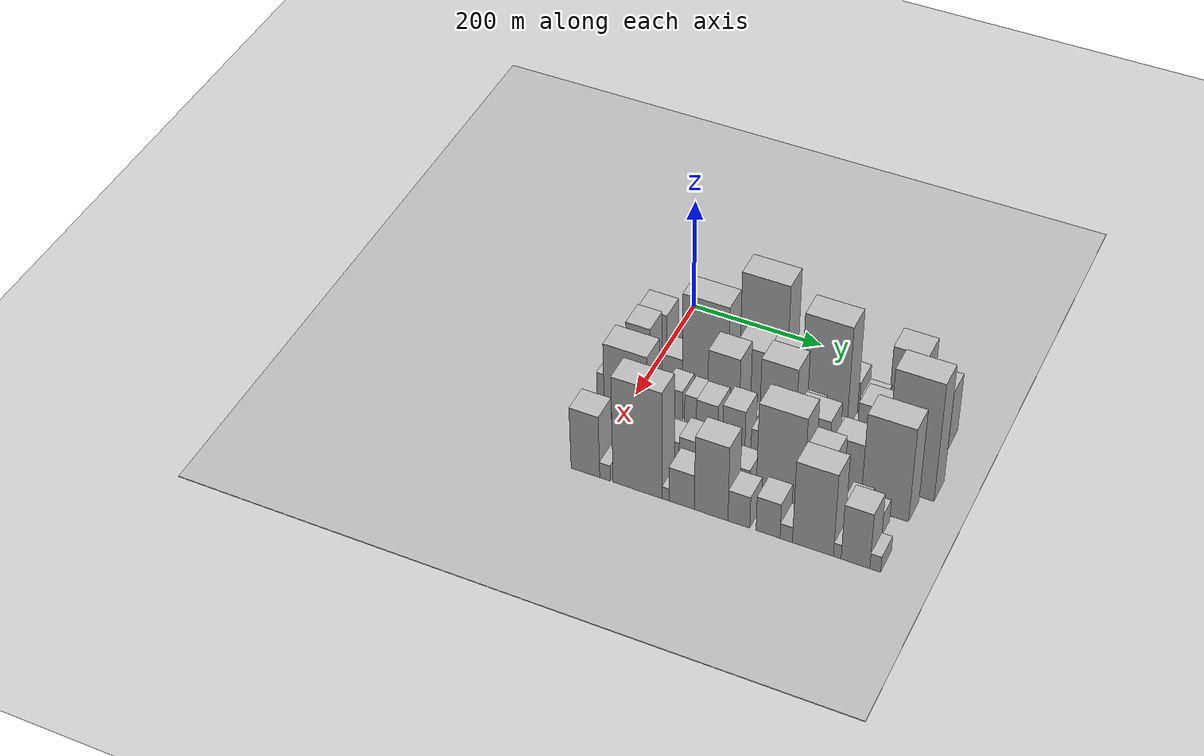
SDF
<sdf version="1.6">
 <world name="default">
  <include><name>ground_plane_1</name><uri>model://HANNAS_ground_plane</uri></include>
  <include>
   <name>ground_plane_2</name>
   <uri>model://HANNAS_ground_plane</uri>
   <pose>100 0 0  0 0 0</pose>
  </include>
  <model name="building_24">
   <static>1</static>
   <pose>100.0000 -11.5762 0 0.000000 0.000000 0.000000</pose>
   <link name="link">
    <pose>0 0 43.50 0 0 0</pose>
    <collision name="collision"><geometry><box><size>40.0000 45.2983 87.0000</size></box></geometry></collision>
    <visual name="visual">
     <cast_shadows>0</cast_shadows>
     <geometry><box><size>40.0000 45.2983 87.0000</size></box></geometry>
     <material>
      <script>
       <uri>model://HANNAS_wall/materials/scripts</uri>
       <uri>model://HANNAS_wall/materials/textures</uri>
       <name>vrc/HANNAS_wall</name>
      </script>
     </material>
    </visual>
   </link>
  </model>
  <model name="building_25">
   <static>1</static>
   <pose>100.0000 21.3272 0 0.000000 0.000000 0.000000</pose>
   <link name="link">
    <pose>0 0 7.50 0 0 0</pose>
    <collision name="collision"><geometry><box><size>40.0000 6.5086 15.0000</size></box></geometry></collision>
    <visual name="visual">
     <cast_shadows>0</cast_shadows>
     <geometry><box><size>40.0000 6.5086 15.0000</size></box></geometry>
     <material>
      <script>
       <uri>model://HANNAS_wall/materials/scripts</uri>
       <uri>model://HANNAS_wall/materials/textures</uri>
       <name>vrc/HANNAS_wall</name>
      </script>
     </material>
    </visual>
   </link>
  </model>
  <model name="building_26">
   <static>1</static>
   <pose>100.0000 47.0952 0 0.000000 0.000000 0.000000</pose>
   <link name="link">
    <pose>0 0 37.50 0 0 0</pose>
    <collision name="collision"><geometry><box><size>40.0000 39.0274 75.0000</size></box></geometry></collision>
    <visual name="visual">
     <cast_shadows>0</cast_shadows>
     <geometry><box><size>40.0000 39.0274 75.0000</size></box></geometry>
     <material>
      <script>
       <uri>model://HANNAS_wall/materials/scripts</uri>
       <uri>model://HANNAS_wall/materials/textures</uri>
       <name>vrc/HANNAS_wall</name>
      </script>
     </material>
    </visual>
   </link>
  </model>
  <model name="building_27">
   <static>1</static>
   <pose>100.0000 70.4942 0 0.000000 0.000000 0.000000</pose>
   <link name="link">
    <pose>0 0 9.00 0 0 0</pose>
    <collision name="collision"><geometry><box><size>40.0000 7.7707 18.0000</size></box></geometry></collision>
    <visual name="visual">
     <cast_shadows>0</cast_shadows>
     <geometry><box><size>40.0000 7.7707 18.0000</size></box></geometry>
     <material>
      <script>
       <uri>model://HANNAS_wall/materials/scripts</uri>
       <uri>model://HANNAS_wall/materials/textures</uri>
       <name>vrc/HANNAS_wall</name>
      </script>
     </material>
    </visual>
   </link>
  </model>
  <model name="building_28">
   <static>1</static>
   <pose>100.0000 103.2333 0 0.000000 0.000000 0.000000</pose>
   <link name="link">
    <pose>0 0 39.00 0 0 0</pose>
    <collision name="collision"><geometry><box><size>40.0000 39.7075 78.0000</size></box></geometry></collision>
    <visual name="visual">
     <cast_shadows>0</cast_shadows>
     <geometry><box><size>40.0000 39.7075 78.0000</size></box></geometry>
     <material>
      <script>
       <uri>model://HANNAS_wall/materials/scripts</uri>
       <uri>model://HANNAS_wall/materials/textures</uri>
       <name>vrc/HANNAS_wall</name>
      </script>
     </material>
    </visual>
   </link>
  </model>
  <model name="building_29">
   <static>1</static>
   <pose>100.0000 158.6253 0 0.000000 0.000000 0.000000</pose>
   <link name="link">
    <pose>0 0 106.50 0 0 0</pose>
    <collision name="collision"><geometry><box><size>40.0000 71.0764 213.0000</size></box></geometry></collision>
    <visual name="visual">
     <cast_shadows>0</cast_shadows>
     <geometry><box><size>40.0000 71.0764 213.0000</size></box></geometry>
     <material>
      <script>
       <uri>model://HANNAS_wall/materials/scripts</uri>
       <uri>model://HANNAS_wall/materials/textures</uri>
       <name>vrc/HANNAS_wall</name>
      </script>
     </material>
    </visual>
   </link>
  </model>
  <model name="building_30">
   <static>1</static>
   <pose>100.0000 216.2023 0 0.000000 0.000000 0.000000</pose>
   <link name="link">
    <pose>0 0 36.00 0 0 0</pose>
    <collision name="collision"><geometry><box><size>40.0000 38.0775 72.0000</size></box></geometry></collision>
    <visual name="visual">
     <cast_shadows>0</cast_shadows>
     <geometry><box><size>40.0000 38.0775 72.0000</size></box></geometry>
     <material>
      <script>
       <uri>model://HANNAS_wall/materials/scripts</uri>
       <uri>model://HANNAS_wall/materials/textures</uri>
       <name>vrc/HANNAS_wall</name>
      </script>
     </material>
    </visual>
   </link>
  </model>
  <model name="building_31">
   <static>1</static>
   <pose>100.0000 250.1702 0 0.000000 0.000000 0.000000</pose>
   <link name="link">
    <pose>0 0 15.00 0 0 0</pose>
    <collision name="collision"><geometry><box><size>40.0000 15.8583 30.0000</size></box></geometry></collision>
    <visual name="visual">
     <cast_shadows>0</cast_shadows>
     <geometry><box><size>40.0000 15.8583 30.0000</size></box></geometry>
     <material>
      <script>
       <uri>model://HANNAS_wall/materials/scripts</uri>
       <uri>model://HANNAS_wall/materials/textures</uri>
       <name>vrc/HANNAS_wall</name>
      </script>
     </material>
    </visual>
   </link>
  </model>
  <model name="building_32">
   <static>1</static>
   <pose>100.0000 280.5941 0 0.000000 0.000000 0.000000</pose>
   <link name="link">
    <pose>0 0 37.50 0 0 0</pose>
    <collision name="collision"><geometry><box><size>40.0000 44.9895 75.0000</size></box></geometry></collision>
    <visual name="visual">
     <cast_shadows>0</cast_shadows>
     <geometry><box><size>40.0000 44.9895 75.0000</size></box></geometry>
     <material>
      <script>
       <uri>model://HANNAS_wall/materials/scripts</uri>
       <uri>model://HANNAS_wall/materials/textures</uri>
       <name>vrc/HANNAS_wall</name>
      </script>
     </material>
    </visual>
   </link>
  </model>
  <model name="building_33">
   <static>1</static>
   <pose>100.0000 311.9117 0 0.000000 0.000000 0.000000</pose>
   <link name="link">
    <pose>0 0 15.00 0 0 0</pose>
    <collision name="collision"><geometry><box><size>40.0000 17.6456 30.0000</size></box></geometry></collision>
    <visual name="visual">
     <cast_shadows>0</cast_shadows>
     <geometry><box><size>40.0000 17.6456 30.0000</size></box></geometry>
     <material>
      <script>
       <uri>model://HANNAS_wall/materials/scripts</uri>
       <uri>model://HANNAS_wall/materials/textures</uri>
       <name>vrc/HANNAS_wall</name>
      </script>
     </material>
    </visual>
   </link>
  </model>
  <model name="building_34">
   <static>1</static>
   <pose>100.0000 335.8827 0 0.000000 0.000000 0.000000</pose>
   <link name="link">
    <pose>0 0 18.00 0 0 0</pose>
    <collision name="collision"><geometry><box><size>40.0000 18.2963 36.0000</size></box></geometry></collision>
    <visual name="visual">
     <cast_shadows>0</cast_shadows>
     <geometry><box><size>40.0000 18.2963 36.0000</size></box></geometry>
     <material>
      <script>
       <uri>model://HANNAS_wall/materials/scripts</uri>
       <uri>model://HANNAS_wall/materials/textures</uri>
       <name>vrc/HANNAS_wall</name>
      </script>
     </material>
    </visual>
   </link>
  </model>
  <model name="building_35">
   <static>1</static>
   <pose>100.0000 370.0634 0 0.000000 0.000000 0.000000</pose>
   <link name="link">
    <pose>0 0 81.00 0 0 0</pose>
    <collision name="collision"><geometry><box><size>40.0000 50.0652 162.0000</size></box></geometry></collision>
    <visual name="visual">
     <cast_shadows>0</cast_shadows>
     <geometry><box><size>40.0000 50.0652 162.0000</size></box></geometry>
     <material>
      <script>
       <uri>model://HANNAS_wall/materials/scripts</uri>
       <uri>model://HANNAS_wall/materials/textures</uri>
       <name>vrc/HANNAS_wall</name>
      </script>
     </material>
    </visual>
   </link>
  </model>
  <model name="building_36">
   <static>1</static>
   <pose>100.0000 414.9326 0 0.000000 0.000000 0.000000</pose>
   <link name="link">
    <pose>0 0 55.50 0 0 0</pose>
    <collision name="collision"><geometry><box><size>40.0000 39.6732 111.0000</size></box></geometry></collision>
    <visual name="visual">
     <cast_shadows>0</cast_shadows>
     <geometry><box><size>40.0000 39.6732 111.0000</size></box></geometry>
     <material>
      <script>
       <uri>model://HANNAS_wall/materials/scripts</uri>
       <uri>model://HANNAS_wall/materials/textures</uri>
       <name>vrc/HANNAS_wall</name>
      </script>
     </material>
    </visual>
   </link>
  </model>
  <model name="building_71">
   <static>1</static>
   <pose>149.0000 -10.8856 0 0.000000 0.000000 0.000000</pose>
   <link name="link">
    <pose>0 0 51.00 0 0 0</pose>
    <collision name="collision"><geometry><box><size>40.0000 37.5283 102.0000</size></box></geometry></collision>
    <visual name="visual">
     <cast_shadows>0</cast_shadows>
     <geometry><box><size>40.0000 37.5283 102.0000</size></box></geometry>
     <material>
      <script>
       <uri>model://HANNAS_wall/materials/scripts</uri>
       <uri>model://HANNAS_wall/materials/textures</uri>
       <name>vrc/HANNAS_wall</name>
      </script>
     </material>
    </visual>
   </link>
  </model>
  <model name="building_72">
   <static>1</static>
   <pose>149.0000 16.5453 0 0.000000 0.000000 0.000000</pose>
   <link name="link">
    <pose>0 0 16.50 0 0 0</pose>
    <collision name="collision"><geometry><box><size>40.0000 17.3335 33.0000</size></box></geometry></collision>
    <visual name="visual">
     <cast_shadows>0</cast_shadows>
     <geometry><box><size>40.0000 17.3335 33.0000</size></box></geometry>
     <material>
      <script>
       <uri>model://HANNAS_wall/materials/scripts</uri>
       <uri>model://HANNAS_wall/materials/textures</uri>
       <name>vrc/HANNAS_wall</name>
      </script>
     </material>
    </visual>
   </link>
  </model>
  <model name="building_73">
   <static>1</static>
   <pose>149.0000 41.0637 0 0.000000 0.000000 0.000000</pose>
   <link name="link">
    <pose>0 0 31.50 0 0 0</pose>
    <collision name="collision"><geometry><box><size>40.0000 31.7033 63.0000</size></box></geometry></collision>
    <visual name="visual">
     <cast_shadows>0</cast_shadows>
     <geometry><box><size>40.0000 31.7033 63.0000</size></box></geometry>
     <material>
      <script>
       <uri>model://HANNAS_wall/materials/scripts</uri>
       <uri>model://HANNAS_wall/materials/textures</uri>
       <name>vrc/HANNAS_wall</name>
      </script>
     </material>
    </visual>
   </link>
  </model>
  <model name="building_74">
   <static>1</static>
   <pose>149.0000 91.6704 0 0.000000 0.000000 0.000000</pose>
   <link name="link">
    <pose>0 0 94.50 0 0 0</pose>
    <collision name="collision"><geometry><box><size>40.0000 69.5101 189.0000</size></box></geometry></collision>
    <visual name="visual">
     <cast_shadows>0</cast_shadows>
     <geometry><box><size>40.0000 69.5101 189.0000</size></box></geometry>
     <material>
      <script>
       <uri>model://HANNAS_wall/materials/scripts</uri>
       <uri>model://HANNAS_wall/materials/textures</uri>
       <name>vrc/HANNAS_wall</name>
      </script>
     </material>
    </visual>
   </link>
  </model>
  <model name="building_75">
   <static>1</static>
   <pose>149.0000 161.1197 0 0.000000 0.000000 0.000000</pose>
   <link name="link">
    <pose>0 0 63.00 0 0 0</pose>
    <collision name="collision"><geometry><box><size>40.0000 49.3885 126.0000</size></box></geometry></collision>
    <visual name="visual">
     <cast_shadows>0</cast_shadows>
     <geometry><box><size>40.0000 49.3885 126.0000</size></box></geometry>
     <material>
      <script>
       <uri>model://HANNAS_wall/materials/scripts</uri>
       <uri>model://HANNAS_wall/materials/textures</uri>
       <name>vrc/HANNAS_wall</name>
      </script>
     </material>
    </visual>
   </link>
  </model>
  <model name="building_76">
   <static>1</static>
   <pose>149.0000 208.2466 0 0.000000 0.000000 0.000000</pose>
   <link name="link">
    <pose>0 0 69.00 0 0 0</pose>
    <collision name="collision"><geometry><box><size>40.0000 44.8652 138.0000</size></box></geometry></collision>
    <visual name="visual">
     <cast_shadows>0</cast_shadows>
     <geometry><box><size>40.0000 44.8652 138.0000</size></box></geometry>
     <material>
      <script>
       <uri>model://HANNAS_wall/materials/scripts</uri>
       <uri>model://HANNAS_wall/materials/textures</uri>
       <name>vrc/HANNAS_wall</name>
      </script>
     </material>
    </visual>
   </link>
  </model>
  <model name="building_77">
   <static>1</static>
   <pose>149.0000 269.0928 0 0.000000 0.000000 0.000000</pose>
   <link name="link">
    <pose>0 0 111.00 0 0 0</pose>
    <collision name="collision"><geometry><box><size>40.0000 68.8273 222.0000</size></box></geometry></collision>
    <visual name="visual">
     <cast_shadows>0</cast_shadows>
     <geometry><box><size>40.0000 68.8273 222.0000</size></box></geometry>
     <material>
      <script>
       <uri>model://HANNAS_wall/materials/scripts</uri>
       <uri>model://HANNAS_wall/materials/textures</uri>
       <name>vrc/HANNAS_wall</name>
      </script>
     </material>
    </visual>
   </link>
  </model>
  <model name="building_78">
   <static>1</static>
   <pose>149.0000 309.4140 0 0.000000 0.000000 0.000000</pose>
   <link name="link">
    <pose>0 0 13.50 0 0 0</pose>
    <collision name="collision"><geometry><box><size>40.0000 11.8151 27.0000</size></box></geometry></collision>
    <visual name="visual">
     <cast_shadows>0</cast_shadows>
     <geometry><box><size>40.0000 11.8151 27.0000</size></box></geometry>
     <material>
      <script>
       <uri>model://HANNAS_wall/materials/scripts</uri>
       <uri>model://HANNAS_wall/materials/textures</uri>
       <name>vrc/HANNAS_wall</name>
      </script>
     </material>
    </visual>
   </link>
  </model>
  <model name="building_79">
   <static>1</static>
   <pose>149.0000 334.7948 0 0.000000 0.000000 0.000000</pose>
   <link name="link">
    <pose>0 0 49.50 0 0 0</pose>
    <collision name="collision"><geometry><box><size>40.0000 30.9463 99.0000</size></box></geometry></collision>
    <visual name="visual">
     <cast_shadows>0</cast_shadows>
     <geometry><box><size>40.0000 30.9463 99.0000</size></box></geometry>
     <material>
      <script>
       <uri>model://HANNAS_wall/materials/scripts</uri>
       <uri>model://HANNAS_wall/materials/textures</uri>
       <name>vrc/HANNAS_wall</name>
      </script>
     </material>
    </visual>
   </link>
  </model>
  <model name="building_80">
   <static>1</static>
   <pose>149.0000 360.9140 0 0.000000 0.000000 0.000000</pose>
   <link name="link">
    <pose>0 0 18.00 0 0 0</pose>
    <collision name="collision"><geometry><box><size>40.0000 21.2920 36.0000</size></box></geometry></collision>
    <visual name="visual">
     <cast_shadows>0</cast_shadows>
     <geometry><box><size>40.0000 21.2920 36.0000</size></box></geometry>
     <material>
      <script>
       <uri>model://HANNAS_wall/materials/scripts</uri>
       <uri>model://HANNAS_wall/materials/textures</uri>
       <name>vrc/HANNAS_wall</name>
      </script>
     </material>
    </visual>
   </link>
  </model>
  <model name="building_81">
   <static>1</static>
   <pose>149.0000 395.6098 0 0.000000 0.000000 0.000000</pose>
   <link name="link">
    <pose>0 0 36.00 0 0 0</pose>
    <collision name="collision"><geometry><box><size>40.0000 40.0995 72.0000</size></box></geometry></collision>
    <visual name="visual">
     <cast_shadows>0</cast_shadows>
     <geometry><box><size>40.0000 40.0995 72.0000</size></box></geometry>
     <material>
      <script>
       <uri>model://HANNAS_wall/materials/scripts</uri>
       <uri>model://HANNAS_wall/materials/textures</uri>
       <name>vrc/HANNAS_wall</name>
      </script>
     </material>
    </visual>
   </link>
  </model>
  <model name="building_119">
   <static>1</static>
   <pose>198.0000 19.2305 0 0.000000 0.000000 0.000000</pose>
   <link name="link">
    <pose>0 0 18.00 0 0 0</pose>
    <collision name="collision"><geometry><box><size>40.0000 21.4598 36.0000</size></box></geometry></collision>
    <visual name="visual">
     <cast_shadows>0</cast_shadows>
     <geometry><box><size>40.0000 21.4598 36.0000</size></box></geometry>
     <material>
      <script>
       <uri>model://HANNAS_wall/materials/scripts</uri>
       <uri>model://HANNAS_wall/materials/textures</uri>
       <name>vrc/HANNAS_wall</name>
      </script>
     </material>
    </visual>
   </link>
  </model>
  <model name="building_120">
   <static>1</static>
   <pose>198.0000 44.6415 0 0.000000 0.000000 0.000000</pose>
   <link name="link">
    <pose>0 0 13.50 0 0 0</pose>
    <collision name="collision"><geometry><box><size>40.0000 13.3621 27.0000</size></box></geometry></collision>
    <visual name="visual">
     <cast_shadows>0</cast_shadows>
     <geometry><box><size>40.0000 13.3621 27.0000</size></box></geometry>
     <material>
      <script>
       <uri>model://HANNAS_wall/materials/scripts</uri>
       <uri>model://HANNAS_wall/materials/textures</uri>
       <name>vrc/HANNAS_wall</name>
      </script>
     </material>
    </visual>
   </link>
  </model>
  <model name="building_121">
   <static>1</static>
   <pose>198.0000 65.3377 0 0.000000 0.000000 0.000000</pose>
   <link name="link">
    <pose>0 0 27.00 0 0 0</pose>
    <collision name="collision"><geometry><box><size>40.0000 28.0304 54.0000</size></box></geometry></collision>
    <visual name="visual">
     <cast_shadows>0</cast_shadows>
     <geometry><box><size>40.0000 28.0304 54.0000</size></box></geometry>
     <material>
      <script>
       <uri>model://HANNAS_wall/materials/scripts</uri>
       <uri>model://HANNAS_wall/materials/textures</uri>
       <name>vrc/HANNAS_wall</name>
      </script>
     </material>
    </visual>
   </link>
  </model>
  <model name="building_122">
   <static>1</static>
   <pose>198.0000 97.2248 0 0.000000 0.000000 0.000000</pose>
   <link name="link">
    <pose>0 0 25.50 0 0 0</pose>
    <collision name="collision"><geometry><box><size>40.0000 29.7440 51.0000</size></box></geometry></collision>
    <visual name="visual">
     <cast_shadows>0</cast_shadows>
     <geometry><box><size>40.0000 29.7440 51.0000</size></box></geometry>
     <material>
      <script>
       <uri>model://HANNAS_wall/materials/scripts</uri>
       <uri>model://HANNAS_wall/materials/textures</uri>
       <name>vrc/HANNAS_wall</name>
      </script>
     </material>
    </visual>
   </link>
  </model>
  <model name="building_123">
   <static>1</static>
   <pose>198.0000 140.6705 0 0.000000 0.000000 0.000000</pose>
   <link name="link">
    <pose>0 0 75.00 0 0 0</pose>
    <collision name="collision"><geometry><box><size>40.0000 47.1474 150.0000</size></box></geometry></collision>
    <visual name="visual">
     <cast_shadows>0</cast_shadows>
     <geometry><box><size>40.0000 47.1474 150.0000</size></box></geometry>
     <material>
      <script>
       <uri>model://HANNAS_wall/materials/scripts</uri>
       <uri>model://HANNAS_wall/materials/textures</uri>
       <name>vrc/HANNAS_wall</name>
      </script>
     </material>
    </visual>
   </link>
  </model>
  <model name="building_124">
   <static>1</static>
   <pose>198.0000 175.2721 0 0.000000 0.000000 0.000000</pose>
   <link name="link">
    <pose>0 0 19.50 0 0 0</pose>
    <collision name="collision"><geometry><box><size>40.0000 22.0558 39.0000</size></box></geometry></collision>
    <visual name="visual">
     <cast_shadows>0</cast_shadows>
     <geometry><box><size>40.0000 22.0558 39.0000</size></box></geometry>
     <material>
      <script>
       <uri>model://HANNAS_wall/materials/scripts</uri>
       <uri>model://HANNAS_wall/materials/textures</uri>
       <name>vrc/HANNAS_wall</name>
      </script>
     </material>
    </visual>
   </link>
  </model>
  <model name="building_125">
   <static>1</static>
   <pose>198.0000 220.9483 0 0.000000 0.000000 0.000000</pose>
   <link name="link">
    <pose>0 0 82.50 0 0 0</pose>
    <collision name="collision"><geometry><box><size>40.0000 53.2965 165.0000</size></box></geometry></collision>
    <visual name="visual">
     <cast_shadows>0</cast_shadows>
     <geometry><box><size>40.0000 53.2965 165.0000</size></box></geometry>
     <material>
      <script>
       <uri>model://HANNAS_wall/materials/scripts</uri>
       <uri>model://HANNAS_wall/materials/textures</uri>
       <name>vrc/HANNAS_wall</name>
      </script>
     </material>
    </visual>
   </link>
  </model>
  <model name="building_126">
   <static>1</static>
   <pose>198.0000 261.6572 0 0.000000 0.000000 0.000000</pose>
   <link name="link">
    <pose>0 0 46.50 0 0 0</pose>
    <collision name="collision"><geometry><box><size>40.0000 28.1213 93.0000</size></box></geometry></collision>
    <visual name="visual">
     <cast_shadows>0</cast_shadows>
     <geometry><box><size>40.0000 28.1213 93.0000</size></box></geometry>
     <material>
      <script>
       <uri>model://HANNAS_wall/materials/scripts</uri>
       <uri>model://HANNAS_wall/materials/textures</uri>
       <name>vrc/HANNAS_wall</name>
      </script>
     </material>
    </visual>
   </link>
  </model>
  <model name="building_127">
   <static>1</static>
   <pose>198.0000 297.5882 0 0.000000 0.000000 0.000000</pose>
   <link name="link">
    <pose>0 0 31.50 0 0 0</pose>
    <collision name="collision"><geometry><box><size>40.0000 33.7406 63.0000</size></box></geometry></collision>
    <visual name="visual">
     <cast_shadows>0</cast_shadows>
     <geometry><box><size>40.0000 33.7406 63.0000</size></box></geometry>
     <material>
      <script>
       <uri>model://HANNAS_wall/materials/scripts</uri>
       <uri>model://HANNAS_wall/materials/textures</uri>
       <name>vrc/HANNAS_wall</name>
      </script>
     </material>
    </visual>
   </link>
  </model>
  <model name="building_128">
   <static>1</static>
   <pose>198.0000 324.5553 0 0.000000 0.000000 0.000000</pose>
   <link name="link">
    <pose>0 0 18.00 0 0 0</pose>
    <collision name="collision"><geometry><box><size>40.0000 20.1936 36.0000</size></box></geometry></collision>
    <visual name="visual">
     <cast_shadows>0</cast_shadows>
     <geometry><box><size>40.0000 20.1936 36.0000</size></box></geometry>
     <material>
      <script>
       <uri>model://HANNAS_wall/materials/scripts</uri>
       <uri>model://HANNAS_wall/materials/textures</uri>
       <name>vrc/HANNAS_wall</name>
      </script>
     </material>
    </visual>
   </link>
  </model>
  <model name="building_129">
   <static>1</static>
   <pose>198.0000 355.9904 0 0.000000 0.000000 0.000000</pose>
   <link name="link">
    <pose>0 0 70.50 0 0 0</pose>
    <collision name="collision"><geometry><box><size>40.0000 42.6764 141.0000</size></box></geometry></collision>
    <visual name="visual">
     <cast_shadows>0</cast_shadows>
     <geometry><box><size>40.0000 42.6764 141.0000</size></box></geometry>
     <material>
      <script>
       <uri>model://HANNAS_wall/materials/scripts</uri>
       <uri>model://HANNAS_wall/materials/textures</uri>
       <name>vrc/HANNAS_wall</name>
      </script>
     </material>
    </visual>
   </link>
  </model>
  <model name="building_130">
   <static>1</static>
   <pose>198.0000 415.3258 0 0.000000 0.000000 0.000000</pose>
   <link name="link">
    <pose>0 0 111.00 0 0 0</pose>
    <collision name="collision"><geometry><box><size>40.0000 69.9945 222.0000</size></box></geometry></collision>
    <visual name="visual">
     <cast_shadows>0</cast_shadows>
     <geometry><box><size>40.0000 69.9945 222.0000</size></box></geometry>
     <material>
      <script>
       <uri>model://HANNAS_wall/materials/scripts</uri>
       <uri>model://HANNAS_wall/materials/textures</uri>
       <name>vrc/HANNAS_wall</name>
      </script>
     </material>
    </visual>
   </link>
  </model>
  <model name="building_166">
   <static>1</static>
   <pose>247.0000 -11.4057 0 0.000000 0.000000 0.000000</pose>
   <link name="link">
    <pose>0 0 46.50 0 0 0</pose>
    <collision name="collision"><geometry><box><size>40.0000 33.0544 93.0000</size></box></geometry></collision>
    <visual name="visual">
     <cast_shadows>0</cast_shadows>
     <geometry><box><size>40.0000 33.0544 93.0000</size></box></geometry>
     <material>
      <script>
       <uri>model://HANNAS_wall/materials/scripts</uri>
       <uri>model://HANNAS_wall/materials/textures</uri>
       <name>vrc/HANNAS_wall</name>
      </script>
     </material>
    </visual>
   </link>
  </model>
  <model name="building_167">
   <static>1</static>
   <pose>247.0000 28.4714 0 0.000000 0.000000 0.000000</pose>
   <link name="link">
    <pose>0 0 60.00 0 0 0</pose>
    <collision name="collision"><geometry><box><size>40.0000 46.6997 120.0000</size></box></geometry></collision>
    <visual name="visual">
     <cast_shadows>0</cast_shadows>
     <geometry><box><size>40.0000 46.6997 120.0000</size></box></geometry>
     <material>
      <script>
       <uri>model://HANNAS_wall/materials/scripts</uri>
       <uri>model://HANNAS_wall/materials/textures</uri>
       <name>vrc/HANNAS_wall</name>
      </script>
     </material>
    </visual>
   </link>
  </model>
  <model name="building_168">
   <static>1</static>
   <pose>247.0000 137.6351 0 0.000000 0.000000 0.000000</pose>
   <link name="link">
    <pose>0 0 51.00 0 0 0</pose>
    <collision name="collision"><geometry><box><size>40.0000 31.8759 102.0000</size></box></geometry></collision>
    <visual name="visual">
     <cast_shadows>0</cast_shadows>
     <geometry><box><size>40.0000 31.8759 102.0000</size></box></geometry>
     <material>
      <script>
       <uri>model://HANNAS_wall/materials/scripts</uri>
       <uri>model://HANNAS_wall/materials/textures</uri>
       <name>vrc/HANNAS_wall</name>
      </script>
     </material>
    </visual>
   </link>
  </model>
  <model name="building_169">
   <static>1</static>
   <pose>247.0000 177.0601 0 0.000000 0.000000 0.000000</pose>
   <link name="link">
    <pose>0 0 54.00 0 0 0</pose>
    <collision name="collision"><geometry><box><size>40.0000 32.9741 108.0000</size></box></geometry></collision>
    <visual name="visual">
     <cast_shadows>0</cast_shadows>
     <geometry><box><size>40.0000 32.9741 108.0000</size></box></geometry>
     <material>
      <script>
       <uri>model://HANNAS_wall/materials/scripts</uri>
       <uri>model://HANNAS_wall/materials/textures</uri>
       <name>vrc/HANNAS_wall</name>
      </script>
     </material>
    </visual>
   </link>
  </model>
  <model name="building_170">
   <static>1</static>
   <pose>247.0000 226.6523 0 0.000000 0.000000 0.000000</pose>
   <link name="link">
    <pose>0 0 40.50 0 0 0</pose>
    <collision name="collision"><geometry><box><size>40.0000 48.2104 81.0000</size></box></geometry></collision>
    <visual name="visual">
     <cast_shadows>0</cast_shadows>
     <geometry><box><size>40.0000 48.2104 81.0000</size></box></geometry>
     <material>
      <script>
       <uri>model://HANNAS_wall/materials/scripts</uri>
       <uri>model://HANNAS_wall/materials/textures</uri>
       <name>vrc/HANNAS_wall</name>
      </script>
     </material>
    </visual>
   </link>
  </model>
  <model name="building_171">
   <static>1</static>
   <pose>247.0000 258.5172 0 0.000000 0.000000 0.000000</pose>
   <link name="link">
    <pose>0 0 10.50 0 0 0</pose>
    <collision name="collision"><geometry><box><size>40.0000 9.5194 21.0000</size></box></geometry></collision>
    <visual name="visual">
     <cast_shadows>0</cast_shadows>
     <geometry><box><size>40.0000 9.5194 21.0000</size></box></geometry>
     <material>
      <script>
       <uri>model://HANNAS_wall/materials/scripts</uri>
       <uri>model://HANNAS_wall/materials/textures</uri>
       <name>vrc/HANNAS_wall</name>
      </script>
     </material>
    </visual>
   </link>
  </model>
  <model name="building_172">
   <static>1</static>
   <pose>247.0000 288.9874 0 0.000000 0.000000 0.000000</pose>
   <link name="link">
    <pose>0 0 70.50 0 0 0</pose>
    <collision name="collision"><geometry><box><size>40.0000 51.4208 141.0000</size></box></geometry></collision>
    <visual name="visual">
     <cast_shadows>0</cast_shadows>
     <geometry><box><size>40.0000 51.4208 141.0000</size></box></geometry>
     <material>
      <script>
       <uri>model://HANNAS_wall/materials/scripts</uri>
       <uri>model://HANNAS_wall/materials/textures</uri>
       <name>vrc/HANNAS_wall</name>
      </script>
     </material>
    </visual>
   </link>
  </model>
  <model name="building_173">
   <static>1</static>
   <pose>247.0000 341.6644 0 0.000000 0.000000 0.000000</pose>
   <link name="link">
    <pose>0 0 58.50 0 0 0</pose>
    <collision name="collision"><geometry><box><size>40.0000 43.9334 117.0000</size></box></geometry></collision>
    <visual name="visual">
     <cast_shadows>0</cast_shadows>
     <geometry><box><size>40.0000 43.9334 117.0000</size></box></geometry>
     <material>
      <script>
       <uri>model://HANNAS_wall/materials/scripts</uri>
       <uri>model://HANNAS_wall/materials/textures</uri>
       <name>vrc/HANNAS_wall</name>
      </script>
     </material>
    </visual>
   </link>
  </model>
  <model name="building_174">
   <static>1</static>
   <pose>247.0000 397.8898 0 0.000000 0.000000 0.000000</pose>
   <link name="link">
    <pose>0 0 88.50 0 0 0</pose>
    <collision name="collision"><geometry><box><size>40.0000 68.5173 177.0000</size></box></geometry></collision>
    <visual name="visual">
     <cast_shadows>0</cast_shadows>
     <geometry><box><size>40.0000 68.5173 177.0000</size></box></geometry>
     <material>
      <script>
       <uri>model://HANNAS_wall/materials/scripts</uri>
       <uri>model://HANNAS_wall/materials/textures</uri>
       <name>vrc/HANNAS_wall</name>
      </script>
     </material>
    </visual>
   </link>
  </model>
  <model name="building_211">
   <static>1</static>
   <pose>296.0000 -7.5408 0 0.000000 0.000000 0.000000</pose>
   <link name="link">
    <pose>0 0 16.50 0 0 0</pose>
    <collision name="collision"><geometry><box><size>40.0000 19.3779 33.0000</size></box></geometry></collision>
    <visual name="visual">
     <cast_shadows>0</cast_shadows>
     <geometry><box><size>40.0000 19.3779 33.0000</size></box></geometry>
     <material>
      <script>
       <uri>model://HANNAS_wall/materials/scripts</uri>
       <uri>model://HANNAS_wall/materials/textures</uri>
       <name>vrc/HANNAS_wall</name>
      </script>
     </material>
    </visual>
   </link>
  </model>
  <model name="building_212">
   <static>1</static>
   <pose>296.0000 39.2769 0 0.000000 0.000000 0.000000</pose>
   <link name="link">
    <pose>0 0 102.00 0 0 0</pose>
    <collision name="collision"><geometry><box><size>40.0000 64.2575 204.0000</size></box></geometry></collision>
    <visual name="visual">
     <cast_shadows>0</cast_shadows>
     <geometry><box><size>40.0000 64.2575 204.0000</size></box></geometry>
     <material>
      <script>
       <uri>model://HANNAS_wall/materials/scripts</uri>
       <uri>model://HANNAS_wall/materials/textures</uri>
       <name>vrc/HANNAS_wall</name>
      </script>
     </material>
    </visual>
   </link>
  </model>
  <model name="building_213">
   <static>1</static>
   <pose>296.0000 99.7199 0 0.000000 0.000000 0.000000</pose>
   <link name="link">
    <pose>0 0 31.50 0 0 0</pose>
    <collision name="collision"><geometry><box><size>40.0000 36.6285 63.0000</size></box></geometry></collision>
    <visual name="visual">
     <cast_shadows>0</cast_shadows>
     <geometry><box><size>40.0000 36.6285 63.0000</size></box></geometry>
     <material>
      <script>
       <uri>model://HANNAS_wall/materials/scripts</uri>
       <uri>model://HANNAS_wall/materials/textures</uri>
       <name>vrc/HANNAS_wall</name>
      </script>
     </material>
    </visual>
   </link>
  </model>
  <model name="building_214">
   <static>1</static>
   <pose>296.0000 138.3616 0 0.000000 0.000000 0.000000</pose>
   <link name="link">
    <pose>0 0 37.50 0 0 0</pose>
    <collision name="collision"><geometry><box><size>40.0000 40.6550 75.0000</size></box></geometry></collision>
    <visual name="visual">
     <cast_shadows>0</cast_shadows>
     <geometry><box><size>40.0000 40.6550 75.0000</size></box></geometry>
     <material>
      <script>
       <uri>model://HANNAS_wall/materials/scripts</uri>
       <uri>model://HANNAS_wall/materials/textures</uri>
       <name>vrc/HANNAS_wall</name>
      </script>
     </material>
    </visual>
   </link>
  </model>
  <model name="building_215">
   <static>1</static>
   <pose>296.0000 167.1240 0 0.000000 0.000000 0.000000</pose>
   <link name="link">
    <pose>0 0 16.50 0 0 0</pose>
    <collision name="collision"><geometry><box><size>40.0000 16.8697 33.0000</size></box></geometry></collision>
    <visual name="visual">
     <cast_shadows>0</cast_shadows>
     <geometry><box><size>40.0000 16.8697 33.0000</size></box></geometry>
     <material>
      <script>
       <uri>model://HANNAS_wall/materials/scripts</uri>
       <uri>model://HANNAS_wall/materials/textures</uri>
       <name>vrc/HANNAS_wall</name>
      </script>
     </material>
    </visual>
   </link>
  </model>
  <model name="building_216">
   <static>1</static>
   <pose>296.0000 186.3547 0 0.000000 0.000000 0.000000</pose>
   <link name="link">
    <pose>0 0 15.00 0 0 0</pose>
    <collision name="collision"><geometry><box><size>40.0000 15.5917 30.0000</size></box></geometry></collision>
    <visual name="visual">
     <cast_shadows>0</cast_shadows>
     <geometry><box><size>40.0000 15.5917 30.0000</size></box></geometry>
     <material>
      <script>
       <uri>model://HANNAS_wall/materials/scripts</uri>
       <uri>model://HANNAS_wall/materials/textures</uri>
       <name>vrc/HANNAS_wall</name>
      </script>
     </material>
    </visual>
   </link>
  </model>
  <model name="building_217">
   <static>1</static>
   <pose>296.0000 207.9764 0 0.000000 0.000000 0.000000</pose>
   <link name="link">
    <pose>0 0 27.00 0 0 0</pose>
    <collision name="collision"><geometry><box><size>40.0000 27.6517 54.0000</size></box></geometry></collision>
    <visual name="visual">
     <cast_shadows>0</cast_shadows>
     <geometry><box><size>40.0000 27.6517 54.0000</size></box></geometry>
     <material>
      <script>
       <uri>model://HANNAS_wall/materials/scripts</uri>
       <uri>model://HANNAS_wall/materials/textures</uri>
       <name>vrc/HANNAS_wall</name>
      </script>
     </material>
    </visual>
   </link>
  </model>
  <model name="building_218">
   <static>1</static>
   <pose>296.0000 226.6679 0 0.000000 0.000000 0.000000</pose>
   <link name="link">
    <pose>0 0 12.00 0 0 0</pose>
    <collision name="collision"><geometry><box><size>40.0000 9.7314 24.0000</size></box></geometry></collision>
    <visual name="visual">
     <cast_shadows>0</cast_shadows>
     <geometry><box><size>40.0000 9.7314 24.0000</size></box></geometry>
     <material>
      <script>
       <uri>model://HANNAS_wall/materials/scripts</uri>
       <uri>model://HANNAS_wall/materials/textures</uri>
       <name>vrc/HANNAS_wall</name>
      </script>
     </material>
    </visual>
   </link>
  </model>
  <model name="building_219">
   <static>1</static>
   <pose>296.0000 265.6899 0 0.000000 0.000000 0.000000</pose>
   <link name="link">
    <pose>0 0 93.00 0 0 0</pose>
    <collision name="collision"><geometry><box><size>40.0000 68.3125 186.0000</size></box></geometry></collision>
    <visual name="visual">
     <cast_shadows>0</cast_shadows>
     <geometry><box><size>40.0000 68.3125 186.0000</size></box></geometry>
     <material>
      <script>
       <uri>model://HANNAS_wall/materials/scripts</uri>
       <uri>model://HANNAS_wall/materials/textures</uri>
       <name>vrc/HANNAS_wall</name>
      </script>
     </material>
    </visual>
   </link>
  </model>
  <model name="building_220">
   <static>1</static>
   <pose>296.0000 320.5535 0 0.000000 0.000000 0.000000</pose>
   <link name="link">
    <pose>0 0 67.50 0 0 0</pose>
    <collision name="collision"><geometry><box><size>40.0000 41.4147 135.0000</size></box></geometry></collision>
    <visual name="visual">
     <cast_shadows>0</cast_shadows>
     <geometry><box><size>40.0000 41.4147 135.0000</size></box></geometry>
     <material>
      <script>
       <uri>model://HANNAS_wall/materials/scripts</uri>
       <uri>model://HANNAS_wall/materials/textures</uri>
       <name>vrc/HANNAS_wall</name>
      </script>
     </material>
    </visual>
   </link>
  </model>
  <model name="building_221">
   <static>1</static>
   <pose>296.0000 349.4481 0 0.000000 0.000000 0.000000</pose>
   <link name="link">
    <pose>0 0 12.00 0 0 0</pose>
    <collision name="collision"><geometry><box><size>40.0000 10.3746 24.0000</size></box></geometry></collision>
    <visual name="visual">
     <cast_shadows>0</cast_shadows>
     <geometry><box><size>40.0000 10.3746 24.0000</size></box></geometry>
     <material>
      <script>
       <uri>model://HANNAS_wall/materials/scripts</uri>
       <uri>model://HANNAS_wall/materials/textures</uri>
       <name>vrc/HANNAS_wall</name>
      </script>
     </material>
    </visual>
   </link>
  </model>
  <model name="building_222">
   <static>1</static>
   <pose>296.0000 369.5818 0 0.000000 0.000000 0.000000</pose>
   <link name="link">
    <pose>0 0 27.00 0 0 0</pose>
    <collision name="collision"><geometry><box><size>40.0000 29.8928 54.0000</size></box></geometry></collision>
    <visual name="visual">
     <cast_shadows>0</cast_shadows>
     <geometry><box><size>40.0000 29.8928 54.0000</size></box></geometry>
     <material>
      <script>
       <uri>model://HANNAS_wall/materials/scripts</uri>
       <uri>model://HANNAS_wall/materials/textures</uri>
       <name>vrc/HANNAS_wall</name>
      </script>
     </material>
    </visual>
   </link>
  </model>
  <model name="building_223">
   <static>1</static>
   <pose>296.0000 396.5552 0 0.000000 0.000000 0.000000</pose>
   <link name="link">
    <pose>0 0 21.00 0 0 0</pose>
    <collision name="collision"><geometry><box><size>40.0000 24.0541 42.0000</size></box></geometry></collision>
    <visual name="visual">
     <cast_shadows>0</cast_shadows>
     <geometry><box><size>40.0000 24.0541 42.0000</size></box></geometry>
     <material>
      <script>
       <uri>model://HANNAS_wall/materials/scripts</uri>
       <uri>model://HANNAS_wall/materials/textures</uri>
       <name>vrc/HANNAS_wall</name>
      </script>
     </material>
    </visual>
   </link>
  </model>
  <model name="building_264">
   <static>1</static>
   <pose>345.0000 0.5031 0 0.000000 0.000000 0.000000</pose>
   <link name="link">
    <pose>0 0 58.50 0 0 0</pose>
    <collision name="collision"><geometry><box><size>40.0000 43.1724 117.0000</size></box></geometry></collision>
    <visual name="visual">
     <cast_shadows>0</cast_shadows>
     <geometry><box><size>40.0000 43.1724 117.0000</size></box></geometry>
     <material>
      <script>
       <uri>model://HANNAS_wall/materials/scripts</uri>
       <uri>model://HANNAS_wall/materials/textures</uri>
       <name>vrc/HANNAS_wall</name>
      </script>
     </material>
    </visual>
   </link>
  </model>
  <model name="building_265">
   <static>1</static>
   <pose>345.0000 30.0804 0 0.000000 0.000000 0.000000</pose>
   <link name="link">
    <pose>0 0 15.00 0 0 0</pose>
    <collision name="collision"><geometry><box><size>40.0000 15.9821 30.0000</size></box></geometry></collision>
    <visual name="visual">
     <cast_shadows>0</cast_shadows>
     <geometry><box><size>40.0000 15.9821 30.0000</size></box></geometry>
     <material>
      <script>
       <uri>model://HANNAS_wall/materials/scripts</uri>
       <uri>model://HANNAS_wall/materials/textures</uri>
       <name>vrc/HANNAS_wall</name>
      </script>
     </material>
    </visual>
   </link>
  </model>
  <model name="building_266">
   <static>1</static>
   <pose>345.0000 78.6294 0 0.000000 0.000000 0.000000</pose>
   <link name="link">
    <pose>0 0 100.50 0 0 0</pose>
    <collision name="collision"><geometry><box><size>40.0000 73.1160 201.0000</size></box></geometry></collision>
    <visual name="visual">
     <cast_shadows>0</cast_shadows>
     <geometry><box><size>40.0000 73.1160 201.0000</size></box></geometry>
     <material>
      <script>
       <uri>model://HANNAS_wall/materials/scripts</uri>
       <uri>model://HANNAS_wall/materials/textures</uri>
       <name>vrc/HANNAS_wall</name>
      </script>
     </material>
    </visual>
   </link>
  </model>
  <model name="building_267">
   <static>1</static>
   <pose>345.0000 120.2496 0 0.000000 0.000000 0.000000</pose>
   <link name="link">
    <pose>0 0 12.00 0 0 0</pose>
    <collision name="collision"><geometry><box><size>40.0000 10.1246 24.0000</size></box></geometry></collision>
    <visual name="visual">
     <cast_shadows>0</cast_shadows>
     <geometry><box><size>40.0000 10.1246 24.0000</size></box></geometry>
     <material>
      <script>
       <uri>model://HANNAS_wall/materials/scripts</uri>
       <uri>model://HANNAS_wall/materials/textures</uri>
       <name>vrc/HANNAS_wall</name>
      </script>
     </material>
    </visual>
   </link>
  </model>
  <model name="building_268">
   <static>1</static>
   <pose>345.0000 144.1303 0 0.000000 0.000000 0.000000</pose>
   <link name="link">
    <pose>0 0 33.00 0 0 0</pose>
    <collision name="collision"><geometry><box><size>40.0000 37.6369 66.0000</size></box></geometry></collision>
    <visual name="visual">
     <cast_shadows>0</cast_shadows>
     <geometry><box><size>40.0000 37.6369 66.0000</size></box></geometry>
     <material>
      <script>
       <uri>model://HANNAS_wall/materials/scripts</uri>
       <uri>model://HANNAS_wall/materials/textures</uri>
       <name>vrc/HANNAS_wall</name>
      </script>
     </material>
    </visual>
   </link>
  </model>
  <model name="building_269">
   <static>1</static>
   <pose>345.0000 187.4685 0 0.000000 0.000000 0.000000</pose>
   <link name="link">
    <pose>0 0 70.50 0 0 0</pose>
    <collision name="collision"><geometry><box><size>40.0000 49.0395 141.0000</size></box></geometry></collision>
    <visual name="visual">
     <cast_shadows>0</cast_shadows>
     <geometry><box><size>40.0000 49.0395 141.0000</size></box></geometry>
     <material>
      <script>
       <uri>model://HANNAS_wall/materials/scripts</uri>
       <uri>model://HANNAS_wall/materials/textures</uri>
       <name>vrc/HANNAS_wall</name>
      </script>
     </material>
    </visual>
   </link>
  </model>
  <model name="building_270">
   <static>1</static>
   <pose>345.0000 227.8057 0 0.000000 0.000000 0.000000</pose>
   <link name="link">
    <pose>0 0 30.00 0 0 0</pose>
    <collision name="collision"><geometry><box><size>40.0000 31.6350 60.0000</size></box></geometry></collision>
    <visual name="visual">
     <cast_shadows>0</cast_shadows>
     <geometry><box><size>40.0000 31.6350 60.0000</size></box></geometry>
     <material>
      <script>
       <uri>model://HANNAS_wall/materials/scripts</uri>
       <uri>model://HANNAS_wall/materials/textures</uri>
       <name>vrc/HANNAS_wall</name>
      </script>
     </material>
    </visual>
   </link>
  </model>
  <model name="building_271">
   <static>1</static>
   <pose>345.0000 269.8867 0 0.000000 0.000000 0.000000</pose>
   <link name="link">
    <pose>0 0 33.00 0 0 0</pose>
    <collision name="collision"><geometry><box><size>40.0000 34.5269 66.0000</size></box></geometry></collision>
    <visual name="visual">
     <cast_shadows>0</cast_shadows>
     <geometry><box><size>40.0000 34.5269 66.0000</size></box></geometry>
     <material>
      <script>
       <uri>model://HANNAS_wall/materials/scripts</uri>
       <uri>model://HANNAS_wall/materials/textures</uri>
       <name>vrc/HANNAS_wall</name>
      </script>
     </material>
    </visual>
   </link>
  </model>
  <model name="building_272">
   <static>1</static>
   <pose>345.0000 296.0412 0 0.000000 0.000000 0.000000</pose>
   <link name="link">
    <pose>0 0 15.00 0 0 0</pose>
    <collision name="collision"><geometry><box><size>40.0000 17.7821 30.0000</size></box></geometry></collision>
    <visual name="visual">
     <cast_shadows>0</cast_shadows>
     <geometry><box><size>40.0000 17.7821 30.0000</size></box></geometry>
     <material>
      <script>
       <uri>model://HANNAS_wall/materials/scripts</uri>
       <uri>model://HANNAS_wall/materials/textures</uri>
       <name>vrc/HANNAS_wall</name>
      </script>
     </material>
    </visual>
   </link>
  </model>
  <model name="building_273">
   <static>1</static>
   <pose>345.0000 334.1423 0 0.000000 0.000000 0.000000</pose>
   <link name="link">
    <pose>0 0 78.00 0 0 0</pose>
    <collision name="collision"><geometry><box><size>40.0000 58.4200 156.0000</size></box></geometry></collision>
    <visual name="visual">
     <cast_shadows>0</cast_shadows>
     <geometry><box><size>40.0000 58.4200 156.0000</size></box></geometry>
     <material>
      <script>
       <uri>model://HANNAS_wall/materials/scripts</uri>
       <uri>model://HANNAS_wall/materials/textures</uri>
       <name>vrc/HANNAS_wall</name>
      </script>
     </material>
    </visual>
   </link>
  </model>
  <model name="building_274">
   <static>1</static>
   <pose>345.0000 368.7810 0 0.000000 0.000000 0.000000</pose>
   <link name="link">
    <pose>0 0 13.50 0 0 0</pose>
    <collision name="collision"><geometry><box><size>40.0000 10.8574 27.0000</size></box></geometry></collision>
    <visual name="visual">
     <cast_shadows>0</cast_shadows>
     <geometry><box><size>40.0000 10.8574 27.0000</size></box></geometry>
     <material>
      <script>
       <uri>model://HANNAS_wall/materials/scripts</uri>
       <uri>model://HANNAS_wall/materials/textures</uri>
       <name>vrc/HANNAS_wall</name>
      </script>
     </material>
    </visual>
   </link>
  </model>
  <model name="building_275">
   <static>1</static>
   <pose>345.0000 394.4286 0 0.000000 0.000000 0.000000</pose>
   <link name="link">
    <pose>0 0 52.50 0 0 0</pose>
    <collision name="collision"><geometry><box><size>40.0000 40.4378 105.0000</size></box></geometry></collision>
    <visual name="visual">
     <cast_shadows>0</cast_shadows>
     <geometry><box><size>40.0000 40.4378 105.0000</size></box></geometry>
     <material>
      <script>
       <uri>model://HANNAS_wall/materials/scripts</uri>
       <uri>model://HANNAS_wall/materials/textures</uri>
       <name>vrc/HANNAS_wall</name>
      </script>
     </material>
    </visual>
   </link>
  </model>
  <model name="building_276">
   <static>1</static>
   <pose>345.0000 422.2608 0 0.000000 0.000000 0.000000</pose>
   <link name="link">
    <pose>0 0 15.00 0 0 0</pose>
    <collision name="collision"><geometry><box><size>40.0000 15.2267 30.0000</size></box></geometry></collision>
    <visual name="visual">
     <cast_shadows>0</cast_shadows>
     <geometry><box><size>40.0000 15.2267 30.0000</size></box></geometry>
     <material>
      <script>
       <uri>model://HANNAS_wall/materials/scripts</uri>
       <uri>model://HANNAS_wall/materials/textures</uri>
       <name>vrc/HANNAS_wall</name>
      </script>
     </material>
    </visual>
   </link>
  </model>
 </world>
</sdf>
